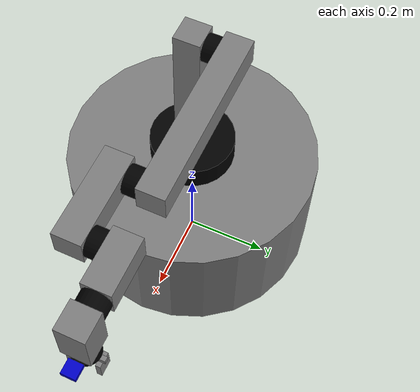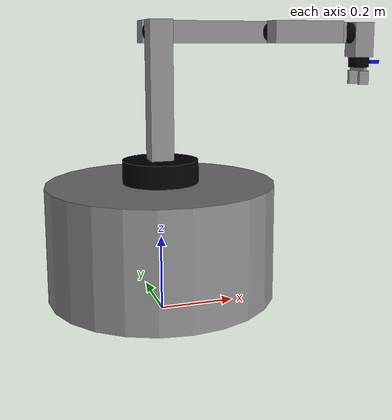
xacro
<?xml version="1.0"?>
<robot name="manipulator_6dof" xmlns:xacro="http://ros.org/wiki/xacro">
  <xacro:include filename="$(find manipulator_6dof_description)/urdf/constants.xacro" />
  <xacro:include filename="$(find manipulator_6dof_description)/urdf/macros.xacro" />
  <xacro:include filename="$(find manipulator_6dof_description)/urdf/manipulator.xacro" />
  <xacro:include filename="$(find manipulator_6dof_description)/urdf/ros2_control.xacro" />
  <xacro:include filename="$(find manipulator_6dof_description)/urdf/depth_camera.xacro" />

  <link name="world"/>
  <xacro:cylinder_link
    name="base_link"
    m="${base_link_mass}"
    height="${base_link_height}"
    radius="${base_link_radius}"
    xyz="0 0 0"
    rpy="0 0 0"
    color="grey" />

  <joint name="world_fixed" type="fixed">
    <origin xyz="0 0 ${offset_from_ground_to_base_link}" rpy="0 0 0"/>
    <parent link="world"/>
    <child link="base_link"/>
  </joint>

</robot>

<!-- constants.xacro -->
<robot xmlns:xacro="http://www.ros.org/wiki/xacro">
  <xacro:property name="joint_offest" value="0.01" />
  <xacro:property name="base_link_height" value="0.3" />
  <xacro:property name="base_link_radius" value="0.3" />
  <xacro:property name="base_link_mass" value="0.5" />
  <xacro:property name="offset_from_ground_to_base_link" value="${base_link_height/2 + 0.05}" />
  <xacro:property name="offset_from_base_link_link1" value="${base_link_height/2 + joint_offest}" />
  <xacro:property name="manipualtor_conectors_height" value="0.03" />
  <xacro:property name="manipualtor_conectors_radius" value="0.03" />
  <xacro:property name="manipualtor_conectors_mass" value="0.3" />

  <xacro:property name="link1_mass" value="2" />
  <xacro:property name="link1_radius" value="0.1" />
  <xacro:property name="link1_height" value="0.1" />

  <xacro:property name="link2_mass" value="1" />
  <xacro:property name="link2_depth" value="0.06" />
  <xacro:property name="link2_width" value="0.06" />
  <xacro:property name="link2_height" value="0.4" />

  <xacro:property name="link4_mass" value="1" />
  <xacro:property name="link4_depth" value="0.4" />
  <xacro:property name="link4_width" value="0.06" />
  <xacro:property name="link4_height" value="0.06" />

  <xacro:property name="link6_mass" value="0.5" />
  <xacro:property name="link6_depth" value="0.2" />
  <xacro:property name="link6_width" value="0.06" />
  <xacro:property name="link6_height" value="0.06" />

  <xacro:property name="link8_mass" value="0.3" />
  <xacro:property name="link8_depth" value="0.12" />
  <xacro:property name="link8_width" value="0.06" />
  <xacro:property name="link8_height" value="0.06" />

  <xacro:property name="link10_mass" value="0.2" />
  <xacro:property name="link10_depth" value="0.06" />
  <xacro:property name="link10_width" value="0.1" />
  <xacro:property name="link10_height" value="0.06" />

  <xacro:property name="link12_mass" value="0.1" />
  <xacro:property name="link12_depth" value="0.01" />
  <xacro:property name="link12_width" value="0.08" />
  <xacro:property name="link12_height" value="0.01" />

  <xacro:property name="gripper_mass" value="0.1" />
  <xacro:property name="gripper_depth" value="0.03" />
  <xacro:property name="gripper_width" value="0.01" />
  <xacro:property name="gripper_height" value="0.04" />
  <xacro:property name="gripper_offset" value="0.03" />
</robot>

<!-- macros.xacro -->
<robot xmlns:xacro="http://www.ros.org/wiki/xacro">
  <material name="grey">
    <color rgba="0.5 0.5 0.5 1.0"/>
  </material>
  <material name="black">
    <color rgba="0 0 0 1.0"/>
  </material>
  <xacro:macro name="cylinder_inertia" params="m r h xyz rpy">
    <inertial>
      <origin xyz="${xyz}" rpy="${rpy}"/>
      <mass value="${m}"/>
      <inertia  ixx="${m*(3*r*r+h*h)/12}" ixy = "0" ixz = "0"
                iyy="${m*(3*r*r+h*h)/12}" iyz = "0"
                izz="${m*r*r/2}"/>
    </inertial>
  </xacro:macro>

  <xacro:macro name="cuboid_inertia" params="m d w h xyz rpy">
    <inertial>
      <origin xyz="${xyz}" rpy="${rpy}"/>
      <mass value="${m}"/>
      <inertia  ixx="${(m/12) * (h*h + d*d)}" ixy="0.0" ixz="0.0"
                iyy="${(m/12) * (w*w + d*d)}" iyz="0.0"
                izz="${(m/12) * (w*w + h*h)}"/>
    </inertial>
  </xacro:macro>

  <xacro:macro name="cuboid_link" params="name m x y z xyz rpy">
    <link name="${name}">
      <xacro:cuboid_inertia m="${m}" d="${x}" w="${y}" h="${z}" xyz="0 0 0" rpy="0 0 0"/>
      <visual>
        <origin xyz="${xyz}" rpy="${rpy}" />
        <geometry>
          <box size="${x} ${y} ${z}" />
        </geometry>
        <material name="grey" />
      </visual>
      <collision>
        <origin xyz="${xyz}" rpy="${rpy}" />
        <geometry>
          <box size="${x} ${y} ${z}" />
        </geometry>
      </collision>
    </link>
  </xacro:macro>

  <xacro:macro name="cylinder_link" params="name m height radius xyz rpy color:=black">
    <link name="${name}">
      <xacro:cylinder_inertia m="${m}" r="${radius}" h="${height}" xyz="0 0 0" rpy="0 0 0"/>
      <visual>
        <origin xyz="${xyz}" rpy="${rpy}" />
        <geometry>
          <cylinder length="${radius}" radius="${radius}" />
        </geometry>
        <material name="${color}" />
      </visual>
      <collision>
        <origin xyz="${xyz}" rpy="${rpy}" />
        <geometry>
          <cylinder length="${radius}" radius="${radius}" />
        </geometry>
      </collision>
    </link>
  </xacro:macro>

</robot>

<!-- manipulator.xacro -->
<robot xmlns:xacro="http://www.ros.org/wiki/xacro">
  <xacro:macro name="manipualtor_conectors" params="name r:=${pi/2} p:=0 y:=0">
    <xacro:cylinder_link
      name="${name}"
      m="${manipualtor_conectors_mass}"
      height="${manipualtor_conectors_height}"
      radius="${manipualtor_conectors_radius}"
      xyz="0 0 0"
      rpy="${r} ${p} ${y}" />
  </xacro:macro>

  <xacro:cylinder_link
    name="link1"
    m="${link1_mass}"
    height="${link1_height}"
    radius="${link1_radius}"
    xyz="0 0 0"
    rpy="0 0 0" />

  <joint name="based_fixed" type="fixed">
    <origin xyz="0 0 ${offset_from_base_link_link1}" rpy="0 0 0"/>
    <parent link="base_link"/>
    <child link="link1"/>
  </joint>

  <xacro:cuboid_link
    name="link2"
    m="${link2_mass}"
    x="${link2_depth}"
    y="${link2_width}"
    z="${link2_height}"
    xyz="0 0 0"
    rpy="0 0 0" />

  <joint name="joint1" type="revolute">
    <parent link="link1"/>
    <child link="link2"/>
    <origin xyz="0 0 ${link2_height/2 + joint_offest}" rpy="0 0 0"/>
    <axis xyz="0 0 1"/>
    <limit velocity="4.8" effort="20" lower="${-2.0*pi}" upper="${2.0*pi}" />
  </joint>

  <xacro:manipualtor_conectors name="link3" />

  <joint name="joint2" type="revolute">
    <origin
      xyz="0 ${link2_width/2 + manipualtor_conectors_height/2} ${link2_height/2 - manipualtor_conectors_radius}"
      rpy="0 0 0"/>
    <parent link="link2"/>
    <child link="link3"/>
    <axis xyz="0 1 0"/>
    <dynamics damping="1.2" friction="1.5"/>
    <limit velocity="4.8" effort="20" lower="${-2.0*pi}" upper="${2.0*pi}" />
  </joint>

  <xacro:cuboid_link
    name="link4"
    m="${link4_mass}"
    x="${link4_depth}"
    y="${link4_width}"
    z="${link4_height}"
    xyz="0 0 0"
    rpy="0 0 0" />

  <joint name="joint3" type="fixed">
    <origin
      xyz="${link4_depth/2 - manipualtor_conectors_radius} ${link4_width/2 + manipualtor_conectors_height/2} 0"
      rpy="0 0 0"/>
    <parent link="link3"/>
    <child link="link4"/>
  </joint>

  <xacro:manipualtor_conectors name="link5" />

  <joint name="joint4" type="revolute">
    <origin
      xyz="${link4_depth/2 - manipualtor_conectors_radius} -${manipualtor_conectors_height + manipualtor_conectors_height/2} 0"
      rpy="0 0 0" />
    <parent link="link4"/>
    <child link="link5"/>
    <axis xyz="0 1 0"/>
    <limit velocity="4.8" effort="20" lower="${-2.0*pi}" upper="${2.0*pi}" />
  </joint>

  <xacro:cuboid_link name="link6" m="${link6_mass}" x="${link6_depth}" y="${link6_width}" z="${link6_height}" xyz="0 0 0" rpy="0 0 0" />

  <joint name="joint5" type="fixed">
    <origin
      xyz="${link6_depth/2 - manipualtor_conectors_radius} -${link6_width/2 + manipualtor_conectors_height/2} 0"
      rpy="0 0 0"/>
    <parent link="link5"/>
    <child link="link6"/>
  </joint>

  <xacro:manipualtor_conectors name="link7" />

  <joint name="joint6" type="revolute">
    <origin
      xyz="${link6_depth/2 - manipualtor_conectors_radius} ${link6_width/2 + manipualtor_conectors_height/2} 0"
      rpy="0 0 0" />
    <parent link="link6" />
    <child link="link7" />
    <axis xyz="0 1 0" />
    <limit velocity="4.8" effort="20" lower="${-2.0*pi}" upper="${2.0*pi}" />
  </joint>

   <xacro:cuboid_link
    name="link8"
    m="${link8_mass}"
    x="${link8_depth}"
    y="${link8_width}"
    z="${link8_height}"
    xyz="0 0 0"
    rpy="0 0 0" />

  <joint name="joint7" type="fixed">
    <origin
      xyz="${manipualtor_conectors_height} ${link8_width/2 + manipualtor_conectors_radius/2} 0"
      rpy="0 0 0" />
    <parent link="link7" />
    <child link="link8" />
  </joint>

  <xacro:manipualtor_conectors name="link9" p="${pi/2}" r="0"/>
  <joint name="joint8" type="revolute">
    <origin xyz="${link8_depth/2 + manipualtor_conectors_height/2} 0 0" rpy="0 0 0"/>
    <parent link="link8"/>
    <child link="link9"/>
    <axis xyz="1 0 0"/>
    <limit velocity="4.8" effort="20" lower="${-2.0*pi}" upper="${2.0*pi}" />
  </joint>

  <xacro:cuboid_link
    name="link10"
    m="${link10_mass}"
    x="${link10_depth}"
    y="${link10_width}"
    z="${link10_height}"
    xyz="0 0 0"
    rpy="${pi/2} 0 0" />

  <joint name="joint9" type="fixed">
    <origin
      xyz="${link10_depth/2 + manipualtor_conectors_height/2} 0 -${link10_width/2 - manipualtor_conectors_radius}"
      rpy="0 0 0" />
    <parent link="link9" />
    <child link="link10" />
  </joint>

  <xacro:manipualtor_conectors name="link11" r="0"/>

  <joint name="joint10" type="revolute">
    <origin xyz="0 0 -${manipualtor_conectors_height/2 + link10_width/2}" rpy="0 0 0"/>
    <parent link="link10"/>
    <child link="link11"/>
    <axis xyz="0 0 1"/>
    <limit velocity="4.8" effort="20" lower="${-2.0*pi}" upper="${2.0*pi}" />
  </joint>

  <xacro:cuboid_link
    name="link12"
    m="${link12_mass}"
    x="${link12_depth}"
    y="${link12_width}"
    z="${link12_height}"
    xyz="0 0 0"
    rpy="0 0 0" />

  <joint name="joint11" type="fixed">
    <origin xyz="0 0 -${link10_width/2 - manipualtor_conectors_radius}" rpy="0 0 0"/>
    <parent link="link11"/>
    <child link="link12"/>
  </joint>

  <xacro:cuboid_link
    name="gripper_left"
    m="${gripper_mass}"
    x="${gripper_depth}"
    y="${gripper_width}"
    z="${gripper_height}"
    xyz="0 0 0"
    rpy="0 0 0" />

  <xacro:cuboid_link
    name="gripper_right"
    m="${gripper_mass}"
    x="${gripper_depth}"
    y="${gripper_width}"
    z="${gripper_height}"
    xyz="0 0 0"
    rpy="0 0 0" />

  <joint name="gripper_left_joint" type="prismatic">
    <origin xyz="0 ${gripper_offset} -${gripper_height/2 + link12_height/2}" rpy="0 0 0"/>
    <parent link="link12"/>
    <child link="gripper_left"/>
    <axis xyz="0 1 0"/>
    <limit velocity="4.8" effort="1" lower="-0.025" upper="0.005" />
  </joint>

  <joint name="gripper_right_joint" type="prismatic">
    <origin xyz="0 -${gripper_offset} -${gripper_height/2 + link12_height/2}" rpy="0 0 0" />
    <parent link="link12" />
    <child link="gripper_right" />
    <axis xyz="0 1 0" />
    <limit velocity="4.8" effort="1" lower="0.025" upper="-0.005" />
    <mimic joint="gripper_left_joint" multiplier="-1"/>
  </joint>

  <gazebo reference="gripper_left">
    <mu1>10</mu1>
    <mu2>10</mu2>
    <minDepth>0.02</minDepth>
  </gazebo>

  <gazebo reference="gripper_right">
    <mu1>10</mu1>
    <mu2>10</mu2>
    <minDepth>0.02</minDepth>
  </gazebo>

  <link name="end_efector_link" />
  <joint name="end_efector" type="fixed">
    <parent link="link12"/>
    <child link="end_efector_link"/>
    <origin xyz="0 0 -${gripper_height/2 + link12_height}" rpy="0 0 0"/>
  </joint>
</robot>

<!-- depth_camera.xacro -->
<robot xmlns:xacro="http://www.ros.org/wiki/xacro" >
  <xacro:property name="camera_depth" value="0.01" />
  <xacro:property name="camera_width" value="0.03" />
  <xacro:property name="camera_height" value="0.03" />
  <joint name="camera_joint" type="fixed">
    <parent link="link10"/>
    <child link="camera_link"/>
    <origin xyz="${link10_depth/2 + camera_height/2} 0 -${link10_width/2 + manipualtor_conectors_height/2}" rpy="0 ${pi/2} 0"/>
  </joint>

  <link name="camera_link">
    <visual>
      <geometry>
        <box size="${camera_depth} ${camera_width} ${camera_height}"/>
      </geometry>
        <material name="blue">
        <color rgba="0 0 0.8 1"/>
      </material>
    </visual>
    <collision>
      <geometry>
        <box size="${camera_depth} ${camera_width} ${camera_height}"/>
      </geometry>
    </collision>
    <inertial>
      <origin xyz="0 0 0" rpy="0 0 0"/>
      <mass value="0.01"/>
      <inertia ixx="0.00001" ixy="0.0" ixz="0.0" iyy="0.00001" iyz="0.0" izz="0.00001"/>
    </inertial>
  </link>

  <joint name="camera_optical_joint" type="fixed">
    <parent link="camera_link"/>
    <child link="camera_link_optical"/>
    <origin xyz="0 0 0" rpy="0 0 0"/>
  </joint>
  <link name="camera_link_optical"></link>

  <gazebo reference="camera_link">
    <sensor name="camera" type="rgbd_camera">
      <visualize>true</visualize>
      <always_on>true</always_on>
      <update_rate>30</update_rate>
      <topic>camera</topic>
      <enable_metrics>false</enable_metrics>
      <camera>
        <horizontal_fov>1.089</horizontal_fov>
        <image>
          <width>640</width>
          <height>480</height>
          <format>R8G8B8</format>
        </image>
        <clip>
          <near>0.05</near>
          <far>8.0</far>
        </clip>
        <lens>
          <intrinsics>
            <fx>554.25469</fx>
            <fy>554.25469</fy>
            <cx>320.5</cx>
            <cy>240.5</cy>
            <s>0</s>
          </intrinsics>
        </lens>
        <noise>
          <type>gaussian</type>
          <mean>0.0</mean>
          <stddev>0.007</stddev>
        </noise>
        <optical_frame_id>camera_link_optical</optical_frame_id>
      </camera>
    </sensor>
  </gazebo>
</robot>
